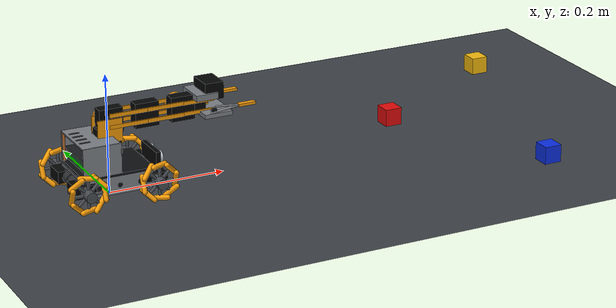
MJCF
<mujoco model="ugrp_masterpi_dynamics_v2">
  <compiler angle="radian" />
  <option timestep="0.002" gravity="0 0 -9.81" integrator="implicitfast" cone="elliptic" iterations="80" />
  <visual><global offwidth="1280" offheight="720" /><map znear=".002" /></visual>
  <asset>
    <texture type="skybox" builtin="gradient" rgb1=".08 .09 .11" rgb2=".20 .22 .26" width="512" height="3072" />
    <texture name="ground" type="2d" builtin="checker" width="256" height="256" rgb1=".20 .22 .24" rgb2=".27 .29 .31" />
    <material name="groundmat" texture="ground" texrepeat="14 14" reflectance=".035" />
    <material name="aluminum" rgba=".48 .50 .52 1" />
    <material name="dark" rgba=".055 .060 .068 1" />
    <material name="black" rgba=".018 .020 .024 1" />

    <material name="orange" rgba=".95 .60 .03 1" />
    <material name="hub" rgba=".28 .30 .32 1" />
    <material name="redmat" rgba=".88 .04 .04 1" />
    <material name="blumat" rgba=".04 .18 .88 1" />
    <material name="yellowmat" rgba=".95 .72 .05 1" />
  </asset>
  <worldbody>
    <light pos="0 -1.3 2.4" dir="0 .25 -1" diffuse="1 1 1" ambient=".34 .34 .34" specular=".22 .22 .22" />
    <light pos="-1 1.7 1.7" dir=".3 -.4 -1" diffuse=".70 .70 .70" ambient=".22 .22 .22" specular=".12 .12 .12" />
    <light pos="1.4 -.2 2.0" dir="-.55 .05 -1" diffuse=".58 .58 .58" ambient=".18 .18 .18" specular=".08 .08 .08" />
    <geom name="floor" type="plane" size="3 3 .1" material="groundmat" />

    <body name="robot" pos="0.000000 0.000000 0.032500">
  <freejoint name="base_free" />
  <inertial pos="0 0 .042" mass=".735" diaginertia=".0020 .0027 .0032" />

  <geom name="base_lower_collision" type="box" pos="0 0 -0.000500" size="0.058000 0.045000 0.015000" rgba="0 0 0 0" contype="2" conaffinity="1" friction=".55 .01 .001" />
  <geom name="base_top" type="box" pos="0 0 0.016500" size="0.060000 0.048000 .002" material="dark" contype="2" conaffinity="1" />
  <geom name="left_side_panel_visual" type="box" pos="0 0.046500 -0.000500" size="0.056000 .0015 0.015000" material="aluminum" mass="0" contype="0" conaffinity="0" />
  <geom name="right_side_panel_visual" type="box" pos="0 -0.046500 -0.000500" size="0.056000 .0015 0.015000" material="aluminum" mass="0" contype="0" conaffinity="0" />
  <geom name="front_plate" type="box" pos="0.060000 0 -0.000500" size=".0015 0.045000 0.015000" material="aluminum" contype="2" conaffinity="1" />
  <geom name="rear_plate_visual" type="box" pos="-0.060000 0 -0.000500" size=".0015 0.045000 0.015000" material="aluminum" mass="0" contype="0" conaffinity="0" />

  <geom name="left_chassis_hole_front" type="cylinder" pos=".035 0.048200 -0.000500" size=".0045 .0005" euler="1.5708 0 0" material="dark" mass="0" contype="0" conaffinity="0" />
  <geom name="left_chassis_hole_mid" type="cylinder" pos="0 0.048200 -0.000500" size=".0040 .0005" euler="1.5708 0 0" material="dark" mass="0" contype="0" conaffinity="0" />
  <geom name="left_chassis_hole_rear" type="cylinder" pos="-.035 0.048200 -0.000500" size=".0045 .0005" euler="1.5708 0 0" material="dark" mass="0" contype="0" conaffinity="0" />
  <geom name="right_chassis_hole_front" type="cylinder" pos=".035 -0.048200 -0.000500" size=".0045 .0005" euler="1.5708 0 0" material="dark" mass="0" contype="0" conaffinity="0" />
  <geom name="right_chassis_hole_mid" type="cylinder" pos="0 -0.048200 -0.000500" size=".0040 .0005" euler="1.5708 0 0" material="dark" mass="0" contype="0" conaffinity="0" />
  <geom name="right_chassis_hole_rear" type="cylinder" pos="-.035 -0.048200 -0.000500" size=".0045 .0005" euler="1.5708 0 0" material="dark" mass="0" contype="0" conaffinity="0" />

  <geom name="motor_fl_gearbox_visual" type="box" pos="0.060000 .037 0" size=".018 .018 .010" material="black" mass="0" contype="0" conaffinity="0" />
  <geom name="motor_fr_gearbox_visual" type="box" pos="0.060000 -.037 0" size=".018 .018 .010" material="black" mass="0" contype="0" conaffinity="0" />
  <geom name="motor_rl_gearbox_visual" type="box" pos="-0.060000 .037 0" size=".018 .018 .010" material="black" mass="0" contype="0" conaffinity="0" />
  <geom name="motor_rr_gearbox_visual" type="box" pos="-0.060000 -.037 0" size=".018 .018 .010" material="black" mass="0" contype="0" conaffinity="0" />
  <geom name="motor_fl_can_visual" type="cylinder" pos="0.060000 .014 0" size=".011 .012" euler="1.5708 0 0" rgba=".18 .19 .20 1" mass="0" contype="0" conaffinity="0" />
  <geom name="motor_fr_can_visual" type="cylinder" pos="0.060000 -.014 0" size=".011 .012" euler="1.5708 0 0" rgba=".18 .19 .20 1" mass="0" contype="0" conaffinity="0" />
  <geom name="motor_rl_can_visual" type="cylinder" pos="-0.060000 .014 0" size=".011 .012" euler="1.5708 0 0" rgba=".18 .19 .20 1" mass="0" contype="0" conaffinity="0" />
  <geom name="motor_rr_can_visual" type="cylinder" pos="-0.060000 -.014 0" size=".011 .012" euler="1.5708 0 0" rgba=".18 .19 .20 1" mass="0" contype="0" conaffinity="0" />

  <geom name="rear_cage_collision" type="box" pos="-0.028000 0 0.043500" size="0.032000 0.046000 0.025000" rgba="0 0 0 0" contype="2" conaffinity="1" />
  <geom name="pi_board_visual" type="box" pos="-0.028000 0 0.027500" size="0.028000 0.042500 .002" rgba=".035 .23 .09 1" mass="0" contype="0" conaffinity="0" />
  <geom name="pi_heatsink_visual" type="box" pos="-0.034000 0 0.034500" size=".012 .014 .003" material="dark" mass="0" contype="0" conaffinity="0" />
  <geom name="expansion_board_visual" type="box" pos="-0.028000 0 0.041500" size="0.028000 0.042500 .0015" rgba=".10 .11 .12 1" mass="0" contype="0" conaffinity="0" />

  <geom name="electronics_left_side_visual" type="box" pos="-0.028000 0.046000 0.043500" size="0.032000 .0014 0.025000" material="aluminum" mass="0" contype="0" conaffinity="0" />
  <geom name="electronics_right_side_visual" type="box" pos="-0.028000 -0.046000 0.043500" size="0.032000 .0014 0.025000" material="aluminum" mass="0" contype="0" conaffinity="0" />
  <geom name="electronics_top_cover_visual" type="box" pos="-0.028000 0 0.067300" size="0.032000 0.046000 .0012" material="aluminum" mass="0" contype="0" conaffinity="0" />

  <geom name="top_cover_slot_1" type="box" pos="-0.046000 .025 0.068550" size=".009 .003 .00015" material="dark" mass="0" contype="0" conaffinity="0" />
  <geom name="top_cover_slot_2" type="box" pos="-0.046000 .010 0.068550" size=".009 .003 .00015" material="dark" mass="0" contype="0" conaffinity="0" />
  <geom name="top_cover_slot_3" type="box" pos="-0.046000 -.005 0.068550" size=".009 .003 .00015" material="dark" mass="0" contype="0" conaffinity="0" />
  <geom name="top_cover_slot_4" type="box" pos="-0.046000 -.020 0.068550" size=".009 .003 .00015" material="dark" mass="0" contype="0" conaffinity="0" />

  <geom name="cage_front_left_standoff" type="capsule" fromto="0.001000 0.043000 0.018500 0.001000 0.043000 0.065500" size=".002" rgba=".72 .42 .16 1" mass="0" contype="0" conaffinity="0" />
  <geom name="cage_front_right_standoff" type="capsule" fromto="0.001000 -0.043000 0.018500 0.001000 -0.043000 0.065500" size=".002" rgba=".72 .42 .16 1" mass="0" contype="0" conaffinity="0" />
  <geom name="cage_rear_left_standoff" type="capsule" fromto="-0.057000 0.043000 0.018500 -0.057000 0.043000 0.065500" size=".002" rgba=".72 .42 .16 1" mass="0" contype="0" conaffinity="0" />
  <geom name="cage_rear_right_standoff" type="capsule" fromto="-0.057000 -0.043000 0.018500 -0.057000 -0.043000 0.065500" size=".002" rgba=".72 .42 .16 1" mass="0" contype="0" conaffinity="0" />
  <geom name="cage_mid_left_standoff" type="capsule" fromto="-0.028000 0.043000 0.018500 -0.028000 0.043000 0.065500" size=".002" rgba=".72 .42 .16 1" mass="0" contype="0" conaffinity="0" />
  <geom name="cage_mid_right_standoff" type="capsule" fromto="-0.028000 -0.043000 0.018500 -0.028000 -0.043000 0.065500" size=".002" rgba=".72 .42 .16 1" mass="0" contype="0" conaffinity="0" />

  <geom name="ultrasonic_bracket" type="box" pos="0.074000 0 0.021500" size=".004 .030 .013" material="black" mass="0" contype="0" conaffinity="0" />
  <geom name="ultrasonic_left" type="cylinder" pos="0.078000 .017 0.021500" size=".010 .006" euler="0 1.5708 0" rgba=".72 .76 .80 1" mass="0" contype="0" conaffinity="0" />
  <geom name="ultrasonic_right" type="cylinder" pos="0.078000 -.017 0.021500" size=".010 .006" euler="0 1.5708 0" rgba=".72 .76 .80 1" mass="0" contype="0" conaffinity="0" />

  <body name="wheel_fl_body" pos="0.060000 0.065500 0">
    <joint name="wheel_fl_joint" type="hinge" axis="0 1 0" damping=".0015" armature=".00002" />
    <inertial pos="0 0 0" mass=".05" diaginertia=".000018 .000029 .000018" />
    <geom name="wheel_fl" type="cylinder" size="0.032500 0.015500" euler="1.5708 0 0" rgba="0 0 0 0" contype="2" conaffinity="1" friction="0.001000 .0001 .00001" condim="4" priority="1" />
    <geom name="wheel_fl_hub_visual" type="cylinder" size=".009 0.015500" euler="1.5708 0 0" material="hub" mass="0" contype="0" conaffinity="0" />
    <geom name="wheel_fl_hub_spoke_0" type="capsule" fromto="0.007000 0.000000 0.000000 0.021775 0.000000 0.000000" size=".0024" material="hub" mass="0" contype="0" conaffinity="0" />
    <geom name="wheel_fl_hub_spoke_1" type="capsule" fromto="0.004950 0.000000 0.004950 0.015397 0.000000 0.015397" size=".0024" material="hub" mass="0" contype="0" conaffinity="0" />
    <geom name="wheel_fl_hub_spoke_2" type="capsule" fromto="0.000000 0.000000 0.007000 0.000000 0.000000 0.021775" size=".0024" material="hub" mass="0" contype="0" conaffinity="0" />
    <geom name="wheel_fl_hub_spoke_3" type="capsule" fromto="-0.004950 0.000000 0.004950 -0.015397 0.000000 0.015397" size=".0024" material="hub" mass="0" contype="0" conaffinity="0" />
    <geom name="wheel_fl_hub_spoke_4" type="capsule" fromto="-0.007000 0.000000 0.000000 -0.021775 0.000000 0.000000" size=".0024" material="hub" mass="0" contype="0" conaffinity="0" />
    <geom name="wheel_fl_hub_spoke_5" type="capsule" fromto="-0.004950 0.000000 -0.004950 -0.015397 0.000000 -0.015397" size=".0024" material="hub" mass="0" contype="0" conaffinity="0" />
    <geom name="wheel_fl_hub_spoke_6" type="capsule" fromto="-0.000000 0.000000 -0.007000 -0.000000 0.000000 -0.021775" size=".0024" material="hub" mass="0" contype="0" conaffinity="0" />
    <geom name="wheel_fl_hub_spoke_7" type="capsule" fromto="0.004950 0.000000 -0.004950 0.015397 0.000000 -0.015397" size=".0024" material="hub" mass="0" contype="0" conaffinity="0" />
    <geom name="wheel_fl_roller_0" type="capsule" fromto="0.027300 -0.004750 -0.011562 0.027300 0.004750 0.011562" size=".0042" material="orange" mass="0" contype="0" conaffinity="0" />
    <geom name="wheel_fl_roller_1" type="capsule" fromto="0.027480 -0.004750 0.011128 0.011128 0.004750 0.027480" size=".0042" material="orange" mass="0" contype="0" conaffinity="0" />
    <geom name="wheel_fl_roller_2" type="capsule" fromto="0.011562 -0.004750 0.027300 -0.011562 0.004750 0.027300" size=".0042" material="orange" mass="0" contype="0" conaffinity="0" />
    <geom name="wheel_fl_roller_3" type="capsule" fromto="-0.011128 -0.004750 0.027480 -0.027480 0.004750 0.011128" size=".0042" material="orange" mass="0" contype="0" conaffinity="0" />
    <geom name="wheel_fl_roller_4" type="capsule" fromto="-0.027300 -0.004750 0.011562 -0.027300 0.004750 -0.011562" size=".0042" material="orange" mass="0" contype="0" conaffinity="0" />
    <geom name="wheel_fl_roller_5" type="capsule" fromto="-0.027480 -0.004750 -0.011128 -0.011128 0.004750 -0.027480" size=".0042" material="orange" mass="0" contype="0" conaffinity="0" />
    <geom name="wheel_fl_roller_6" type="capsule" fromto="-0.011562 -0.004750 -0.027300 0.011562 0.004750 -0.027300" size=".0042" material="orange" mass="0" contype="0" conaffinity="0" />
    <geom name="wheel_fl_roller_7" type="capsule" fromto="0.011128 -0.004750 -0.027480 0.027480 0.004750 -0.011128" size=".0042" material="orange" mass="0" contype="0" conaffinity="0" />
  </body>
  <body name="wheel_fr_body" pos="0.060000 -0.065500 0">
    <joint name="wheel_fr_joint" type="hinge" axis="0 1 0" damping=".0015" armature=".00002" />
    <inertial pos="0 0 0" mass=".05" diaginertia=".000018 .000029 .000018" />
    <geom name="wheel_fr" type="cylinder" size="0.032500 0.015500" euler="1.5708 0 0" rgba="0 0 0 0" contype="2" conaffinity="1" friction="0.001000 .0001 .00001" condim="4" priority="1" />
    <geom name="wheel_fr_hub_visual" type="cylinder" size=".009 0.015500" euler="1.5708 0 0" material="hub" mass="0" contype="0" conaffinity="0" />
    <geom name="wheel_fr_hub_spoke_0" type="capsule" fromto="0.007000 0.000000 0.000000 0.021775 0.000000 0.000000" size=".0024" material="hub" mass="0" contype="0" conaffinity="0" />
    <geom name="wheel_fr_hub_spoke_1" type="capsule" fromto="0.004950 0.000000 0.004950 0.015397 0.000000 0.015397" size=".0024" material="hub" mass="0" contype="0" conaffinity="0" />
    <geom name="wheel_fr_hub_spoke_2" type="capsule" fromto="0.000000 0.000000 0.007000 0.000000 0.000000 0.021775" size=".0024" material="hub" mass="0" contype="0" conaffinity="0" />
    <geom name="wheel_fr_hub_spoke_3" type="capsule" fromto="-0.004950 0.000000 0.004950 -0.015397 0.000000 0.015397" size=".0024" material="hub" mass="0" contype="0" conaffinity="0" />
    <geom name="wheel_fr_hub_spoke_4" type="capsule" fromto="-0.007000 0.000000 0.000000 -0.021775 0.000000 0.000000" size=".0024" material="hub" mass="0" contype="0" conaffinity="0" />
    <geom name="wheel_fr_hub_spoke_5" type="capsule" fromto="-0.004950 0.000000 -0.004950 -0.015397 0.000000 -0.015397" size=".0024" material="hub" mass="0" contype="0" conaffinity="0" />
    <geom name="wheel_fr_hub_spoke_6" type="capsule" fromto="-0.000000 0.000000 -0.007000 -0.000000 0.000000 -0.021775" size=".0024" material="hub" mass="0" contype="0" conaffinity="0" />
    <geom name="wheel_fr_hub_spoke_7" type="capsule" fromto="0.004950 0.000000 -0.004950 0.015397 0.000000 -0.015397" size=".0024" material="hub" mass="0" contype="0" conaffinity="0" />
    <geom name="wheel_fr_roller_0" type="capsule" fromto="0.027300 -0.004750 0.011562 0.027300 0.004750 -0.011562" size=".0042" material="orange" mass="0" contype="0" conaffinity="0" />
    <geom name="wheel_fr_roller_1" type="capsule" fromto="0.011128 -0.004750 0.027480 0.027480 0.004750 0.011128" size=".0042" material="orange" mass="0" contype="0" conaffinity="0" />
    <geom name="wheel_fr_roller_2" type="capsule" fromto="-0.011562 -0.004750 0.027300 0.011562 0.004750 0.027300" size=".0042" material="orange" mass="0" contype="0" conaffinity="0" />
    <geom name="wheel_fr_roller_3" type="capsule" fromto="-0.027480 -0.004750 0.011128 -0.011128 0.004750 0.027480" size=".0042" material="orange" mass="0" contype="0" conaffinity="0" />
    <geom name="wheel_fr_roller_4" type="capsule" fromto="-0.027300 -0.004750 -0.011562 -0.027300 0.004750 0.011562" size=".0042" material="orange" mass="0" contype="0" conaffinity="0" />
    <geom name="wheel_fr_roller_5" type="capsule" fromto="-0.011128 -0.004750 -0.027480 -0.027480 0.004750 -0.011128" size=".0042" material="orange" mass="0" contype="0" conaffinity="0" />
    <geom name="wheel_fr_roller_6" type="capsule" fromto="0.011562 -0.004750 -0.027300 -0.011562 0.004750 -0.027300" size=".0042" material="orange" mass="0" contype="0" conaffinity="0" />
    <geom name="wheel_fr_roller_7" type="capsule" fromto="0.027480 -0.004750 -0.011128 0.011128 0.004750 -0.027480" size=".0042" material="orange" mass="0" contype="0" conaffinity="0" />
  </body>
  <body name="wheel_rl_body" pos="-0.060000 0.065500 0">
    <joint name="wheel_rl_joint" type="hinge" axis="0 1 0" damping=".0015" armature=".00002" />
    <inertial pos="0 0 0" mass=".05" diaginertia=".000018 .000029 .000018" />
    <geom name="wheel_rl" type="cylinder" size="0.032500 0.015500" euler="1.5708 0 0" rgba="0 0 0 0" contype="2" conaffinity="1" friction="0.001000 .0001 .00001" condim="4" priority="1" />
    <geom name="wheel_rl_hub_visual" type="cylinder" size=".009 0.015500" euler="1.5708 0 0" material="hub" mass="0" contype="0" conaffinity="0" />
    <geom name="wheel_rl_hub_spoke_0" type="capsule" fromto="0.007000 0.000000 0.000000 0.021775 0.000000 0.000000" size=".0024" material="hub" mass="0" contype="0" conaffinity="0" />
    <geom name="wheel_rl_hub_spoke_1" type="capsule" fromto="0.004950 0.000000 0.004950 0.015397 0.000000 0.015397" size=".0024" material="hub" mass="0" contype="0" conaffinity="0" />
    <geom name="wheel_rl_hub_spoke_2" type="capsule" fromto="0.000000 0.000000 0.007000 0.000000 0.000000 0.021775" size=".0024" material="hub" mass="0" contype="0" conaffinity="0" />
    <geom name="wheel_rl_hub_spoke_3" type="capsule" fromto="-0.004950 0.000000 0.004950 -0.015397 0.000000 0.015397" size=".0024" material="hub" mass="0" contype="0" conaffinity="0" />
    <geom name="wheel_rl_hub_spoke_4" type="capsule" fromto="-0.007000 0.000000 0.000000 -0.021775 0.000000 0.000000" size=".0024" material="hub" mass="0" contype="0" conaffinity="0" />
    <geom name="wheel_rl_hub_spoke_5" type="capsule" fromto="-0.004950 0.000000 -0.004950 -0.015397 0.000000 -0.015397" size=".0024" material="hub" mass="0" contype="0" conaffinity="0" />
    <geom name="wheel_rl_hub_spoke_6" type="capsule" fromto="-0.000000 0.000000 -0.007000 -0.000000 0.000000 -0.021775" size=".0024" material="hub" mass="0" contype="0" conaffinity="0" />
    <geom name="wheel_rl_hub_spoke_7" type="capsule" fromto="0.004950 0.000000 -0.004950 0.015397 0.000000 -0.015397" size=".0024" material="hub" mass="0" contype="0" conaffinity="0" />
    <geom name="wheel_rl_roller_0" type="capsule" fromto="0.027300 -0.004750 0.011562 0.027300 0.004750 -0.011562" size=".0042" material="orange" mass="0" contype="0" conaffinity="0" />
    <geom name="wheel_rl_roller_1" type="capsule" fromto="0.011128 -0.004750 0.027480 0.027480 0.004750 0.011128" size=".0042" material="orange" mass="0" contype="0" conaffinity="0" />
    <geom name="wheel_rl_roller_2" type="capsule" fromto="-0.011562 -0.004750 0.027300 0.011562 0.004750 0.027300" size=".0042" material="orange" mass="0" contype="0" conaffinity="0" />
    <geom name="wheel_rl_roller_3" type="capsule" fromto="-0.027480 -0.004750 0.011128 -0.011128 0.004750 0.027480" size=".0042" material="orange" mass="0" contype="0" conaffinity="0" />
    <geom name="wheel_rl_roller_4" type="capsule" fromto="-0.027300 -0.004750 -0.011562 -0.027300 0.004750 0.011562" size=".0042" material="orange" mass="0" contype="0" conaffinity="0" />
    <geom name="wheel_rl_roller_5" type="capsule" fromto="-0.011128 -0.004750 -0.027480 -0.027480 0.004750 -0.011128" size=".0042" material="orange" mass="0" contype="0" conaffinity="0" />
    <geom name="wheel_rl_roller_6" type="capsule" fromto="0.011562 -0.004750 -0.027300 -0.011562 0.004750 -0.027300" size=".0042" material="orange" mass="0" contype="0" conaffinity="0" />
    <geom name="wheel_rl_roller_7" type="capsule" fromto="0.027480 -0.004750 -0.011128 0.011128 0.004750 -0.027480" size=".0042" material="orange" mass="0" contype="0" conaffinity="0" />
  </body>
  <body name="wheel_rr_body" pos="-0.060000 -0.065500 0">
    <joint name="wheel_rr_joint" type="hinge" axis="0 1 0" damping=".0015" armature=".00002" />
    <inertial pos="0 0 0" mass=".05" diaginertia=".000018 .000029 .000018" />
    <geom name="wheel_rr" type="cylinder" size="0.032500 0.015500" euler="1.5708 0 0" rgba="0 0 0 0" contype="2" conaffinity="1" friction="0.001000 .0001 .00001" condim="4" priority="1" />
    <geom name="wheel_rr_hub_visual" type="cylinder" size=".009 0.015500" euler="1.5708 0 0" material="hub" mass="0" contype="0" conaffinity="0" />
    <geom name="wheel_rr_hub_spoke_0" type="capsule" fromto="0.007000 0.000000 0.000000 0.021775 0.000000 0.000000" size=".0024" material="hub" mass="0" contype="0" conaffinity="0" />
    <geom name="wheel_rr_hub_spoke_1" type="capsule" fromto="0.004950 0.000000 0.004950 0.015397 0.000000 0.015397" size=".0024" material="hub" mass="0" contype="0" conaffinity="0" />
    <geom name="wheel_rr_hub_spoke_2" type="capsule" fromto="0.000000 0.000000 0.007000 0.000000 0.000000 0.021775" size=".0024" material="hub" mass="0" contype="0" conaffinity="0" />
    <geom name="wheel_rr_hub_spoke_3" type="capsule" fromto="-0.004950 0.000000 0.004950 -0.015397 0.000000 0.015397" size=".0024" material="hub" mass="0" contype="0" conaffinity="0" />
    <geom name="wheel_rr_hub_spoke_4" type="capsule" fromto="-0.007000 0.000000 0.000000 -0.021775 0.000000 0.000000" size=".0024" material="hub" mass="0" contype="0" conaffinity="0" />
    <geom name="wheel_rr_hub_spoke_5" type="capsule" fromto="-0.004950 0.000000 -0.004950 -0.015397 0.000000 -0.015397" size=".0024" material="hub" mass="0" contype="0" conaffinity="0" />
    <geom name="wheel_rr_hub_spoke_6" type="capsule" fromto="-0.000000 0.000000 -0.007000 -0.000000 0.000000 -0.021775" size=".0024" material="hub" mass="0" contype="0" conaffinity="0" />
    <geom name="wheel_rr_hub_spoke_7" type="capsule" fromto="0.004950 0.000000 -0.004950 0.015397 0.000000 -0.015397" size=".0024" material="hub" mass="0" contype="0" conaffinity="0" />
    <geom name="wheel_rr_roller_0" type="capsule" fromto="0.027300 -0.004750 -0.011562 0.027300 0.004750 0.011562" size=".0042" material="orange" mass="0" contype="0" conaffinity="0" />
    <geom name="wheel_rr_roller_1" type="capsule" fromto="0.027480 -0.004750 0.011128 0.011128 0.004750 0.027480" size=".0042" material="orange" mass="0" contype="0" conaffinity="0" />
    <geom name="wheel_rr_roller_2" type="capsule" fromto="0.011562 -0.004750 0.027300 -0.011562 0.004750 0.027300" size=".0042" material="orange" mass="0" contype="0" conaffinity="0" />
    <geom name="wheel_rr_roller_3" type="capsule" fromto="-0.011128 -0.004750 0.027480 -0.027480 0.004750 0.011128" size=".0042" material="orange" mass="0" contype="0" conaffinity="0" />
    <geom name="wheel_rr_roller_4" type="capsule" fromto="-0.027300 -0.004750 0.011562 -0.027300 0.004750 -0.011562" size=".0042" material="orange" mass="0" contype="0" conaffinity="0" />
    <geom name="wheel_rr_roller_5" type="capsule" fromto="-0.027480 -0.004750 -0.011128 -0.011128 0.004750 -0.027480" size=".0042" material="orange" mass="0" contype="0" conaffinity="0" />
    <geom name="wheel_rr_roller_6" type="capsule" fromto="-0.011562 -0.004750 -0.027300 0.011562 0.004750 -0.027300" size=".0042" material="orange" mass="0" contype="0" conaffinity="0" />
    <geom name="wheel_rr_roller_7" type="capsule" fromto="0.011128 -0.004750 -0.027480 0.027480 0.004750 -0.011128" size=".0042" material="orange" mass="0" contype="0" conaffinity="0" />
  </body>

  <body name="arm_base" pos="0 0 0.062500">
    <joint name="arm_yaw" type="hinge" axis="0 0 1" range="-1.75 1.75" damping=".025" />
    <inertial pos="0 0 .012" mass=".030" diaginertia=".000025 .000025 .000020" />
    <geom name="base_yaw_servo_visual" type="box" pos="0 0 -.002" size="0.020000 0.010000 0.020250" material="black" mass="0" contype="0" conaffinity="0" />
    <geom name="base_yaw_bearing_visual" type="cylinder" pos="0 0 -.021" size=".024 .004" material="aluminum" mass="0" contype="0" conaffinity="0" />
    <geom name="arm_pedestal_collision" type="cylinder" size=".025 .020" pos="0 0 -.002" rgba="0 0 0 0" contype="2" conaffinity="1" />

    <geom name="shoulder_mount_plate_left" type="box" pos="0 0.012500 0.015250" size=".021 0.001000 0.019250" material="orange" mass="0" contype="0" conaffinity="0" />
    <geom name="shoulder_mount_plate_right" type="box" pos="0 -0.012500 0.015250" size=".021 0.001000 0.019250" material="orange" mass="0" contype="0" conaffinity="0" />

    <body name="shoulder_link" pos="0 0 0.030500">
      <joint name="shoulder" type="hinge" axis="0 -1 0" range="-.15 2.80" damping=".035" />
      <inertial pos="0.032500 0 0" mass=".050" diaginertia=".000020 .000030 .000030" />
      <geom name="shoulder_servo_visual" type="box" pos=".004 0 0" size="0.020000 0.010000 0.020250" material="black" mass="0" contype="0" conaffinity="0" />
      <geom name="shoulder_horn_outer" type="cylinder" pos="0 0.014500 0" size="0.018000 0.001500" euler="1.5708 0 0" material="orange" mass="0" contype="0" conaffinity="0" />
      <geom name="shoulder_horn_center" type="cylinder" pos="0 0.016500 0" size=".006 .0012" euler="1.5708 0 0" rgba=".82 .84 .86 1" mass="0" contype="0" conaffinity="0" />

      <geom name="upper_arm_plate_left" type="box" pos="0.032500 0.012500 0.009500" size="0.032500 0.001000 0.003200" material="orange" mass="0" contype="0" conaffinity="0" />
      <geom name="upper_arm_plate_left_lower" type="box" pos="0.032500 0.012500 -0.009500" size="0.032500 0.001000 0.003200" material="orange" mass="0" contype="0" conaffinity="0" />
      <geom name="upper_arm_plate_right" type="box" pos="0.032500 -0.012500 0.009500" size="0.032500 0.001000 0.003200" material="orange" mass="0" contype="0" conaffinity="0" />
      <geom name="upper_arm_plate_right_lower" type="box" pos="0.032500 -0.012500 -0.009500" size="0.032500 0.001000 0.003200" material="orange" mass="0" contype="0" conaffinity="0" />
      <geom name="upper_arm_collision" type="capsule" fromto="0 0 0 0.065000 0 0" size=".011" rgba="0 0 0 0" contype="2" conaffinity="1" />

      <body name="elbow_link" pos="0.065000 0 0">
        <joint name="elbow" type="hinge" axis="0 -1 0" range="-1.80 1.80" damping=".030" />
        <inertial pos="0.031000 0 0" mass=".040" diaginertia=".000016 .000022 .000022" />
        <geom name="elbow_servo_visual" type="box" pos="0 0 0" size="0.020000 0.010000 0.020250" material="black" mass="0" contype="0" conaffinity="0" />
        <geom name="elbow_horn_outer" type="cylinder" pos="0 0.014500 0" size="0.018000 0.001500" euler="1.5708 0 0" material="orange" mass="0" contype="0" conaffinity="0" />
        <geom name="elbow_horn_center" type="cylinder" pos="0 0.016500 0" size=".006 .0012" euler="1.5708 0 0" rgba=".82 .84 .86 1" mass="0" contype="0" conaffinity="0" />
        <geom name="forearm_plate_left" type="box" pos="0.031000 0.012500 0.009500" size="0.031000 0.001000 0.003200" material="orange" mass="0" contype="0" conaffinity="0" />
        <geom name="forearm_plate_left_lower" type="box" pos="0.031000 0.012500 -0.009500" size="0.031000 0.001000 0.003200" material="orange" mass="0" contype="0" conaffinity="0" />
        <geom name="forearm_plate_right" type="box" pos="0.031000 -0.012500 0.009500" size="0.031000 0.001000 0.003200" material="orange" mass="0" contype="0" conaffinity="0" />
        <geom name="forearm_plate_right_lower" type="box" pos="0.031000 -0.012500 -0.009500" size="0.031000 0.001000 0.003200" material="orange" mass="0" contype="0" conaffinity="0" />
        <geom name="forearm_collision" type="capsule" fromto="0 0 0 0.062000 0 0" size=".010" rgba="0 0 0 0" contype="2" conaffinity="1" />

        <body name="wrist_link" pos="0.062000 0 0">
          <joint name="wrist_pitch" type="hinge" axis="0 -1 0" range="-1.80 1.80" damping=".020" />
          <inertial pos=".035 0 0" mass=".025" diaginertia=".000010 .000018 .000018" />
          <geom name="wrist_servo_visual" type="box" pos="0 0 0" size="0.020000 0.010000 0.020250" material="black" mass="0" contype="0" conaffinity="0" />
          <geom name="wrist_horn_outer" type="cylinder" pos="0 .022 0" size=".017 .003" euler="1.5708 0 0" material="orange" mass="0" contype="0" conaffinity="0" />
          <geom name="wrist_horn_center" type="cylinder" pos="0 0.016500 0" size=".006 .0012" euler="1.5708 0 0" rgba=".82 .84 .86 1" mass="0" contype="0" conaffinity="0" />
          <geom name="wrist_plate_left" type="box" pos=".027 0.012500 0.009000" size=".027 0.001000 0.003000" material="orange" mass="0" contype="0" conaffinity="0" />
          <geom name="wrist_plate_left_lower" type="box" pos=".027 0.012500 -0.009000" size=".027 0.001000 0.003000" material="orange" mass="0" contype="0" conaffinity="0" />
          <geom name="wrist_plate_right" type="box" pos=".027 -0.012500 0.009000" size=".027 0.001000 0.003000" material="orange" mass="0" contype="0" conaffinity="0" />
          <geom name="wrist_plate_right_lower" type="box" pos=".027 -0.012500 -0.009000" size=".027 0.001000 0.003000" material="orange" mass="0" contype="0" conaffinity="0" />
          <geom name="wrist_collision" type="capsule" fromto="0 0 0 .055 0 0" size=".009" rgba="0 0 0 0" contype="2" conaffinity="1" />

          <body name="gripper" pos="0 0 0">
            <inertial pos=".065 0 .006" mass=".010" diaginertia=".000010 .000017 .000017" />
            <geom name="gripper_servo_visual" type="box" pos=".030 0 -.003" size="0.011150 0.006000 0.011600" material="black" mass="0" contype="0" conaffinity="0" />
            <geom name="gripper_crossbar_visual" type="box" pos=".052 0 -.012" size=".024 .034 .0035" material="aluminum" mass="0" contype="0" conaffinity="0" />

            <geom name="camera_bracket" type="box" pos=".036 0 .018" size=".019 .026 .005" material="aluminum" contype="2" conaffinity="1" />
            <geom name="camera_body" type="box" pos=".050 0 .025" size=".016 .022 .014" material="black" mass="0" contype="0" conaffinity="0" />
            <geom name="camera_lens_visual" type="cylinder" pos=".067 0 .025" size=".009 .003" euler="0 1.5708 0" rgba=".02 .02 .025 1" mass="0" contype="0" conaffinity="0" />
            <camera name="robot_cam" pos="0.067000000000 0.000000000000 0.013600000000" quat="0.466417262019 0.531464897891 -0.531464897891 -0.466417262019" focalpixel="619.519454051723 622.165488481875" principalpixel="32.310893911032 21.303133515443" resolution="640 480" sensorsize="640 480" />
            <site name="camera_axis_site" pos="0.070000 0 0" size=".001" rgba="0 0 0 0" />

            <body name="left_jaw" pos="0 .035 0">
              <joint name="left_gripper_close" type="slide" axis="0 -1 0" range="0 0.016000" damping="1.200" />
              <inertial pos=".095 0 -.018" mass=".005" diaginertia=".000002 .000006 .000006" />
              <geom name="left_jaw_link_visual" type="capsule" fromto=".039 0 -.006 .090 0 0" size=".0022" material="aluminum" mass="0" contype="0" conaffinity="0" />
              <geom name="left_jaw_link_upper_visual" type="capsule" fromto=".047 0 .004 .089 0 0" size=".0016" material="aluminum" mass="0" contype="0" conaffinity="0" />
              <geom name="left_jaw_pivot_visual" type="cylinder" pos=".043 0 -.002" size=".005 .0015" euler="1.5708 0 0" material="dark" mass="0" contype="0" conaffinity="0" />
              <geom name="left_finger_pad_visual" type="box" pos=".100 0 0" size="0.015000 0.004000 0.002200" material="orange" mass="0" contype="0" conaffinity="0" />
              <geom name="left_finger" type="box" pos=".100 0 0" size="0.014000 0.004500 0.003500" rgba="0 0 0 0" contype="2" conaffinity="1" friction="3.400000 0.030000 0.002000" solref=".006 1" solimp=".90 .97 .002" />
            </body>
            <body name="right_jaw" pos="0 -.035 0">
              <joint name="right_gripper_close" type="slide" axis="0 1 0" range="0 0.016000" damping="1.200" />
              <inertial pos=".095 0 -.018" mass=".005" diaginertia=".000002 .000006 .000006" />
              <geom name="right_jaw_link_visual" type="capsule" fromto=".039 0 -.006 .090 0 0" size=".0022" material="aluminum" mass="0" contype="0" conaffinity="0" />
              <geom name="right_jaw_link_upper_visual" type="capsule" fromto=".047 0 .004 .089 0 0" size=".0016" material="aluminum" mass="0" contype="0" conaffinity="0" />
              <geom name="right_jaw_pivot_visual" type="cylinder" pos=".043 0 -.002" size=".005 .0015" euler="1.5708 0 0" material="dark" mass="0" contype="0" conaffinity="0" />
              <geom name="right_finger_pad_visual" type="box" pos=".100 0 0" size="0.015000 0.004000 0.002200" material="orange" mass="0" contype="0" conaffinity="0" />
              <geom name="right_finger" type="box" pos=".100 0 0" size="0.014000 0.004500 0.003500" rgba="0 0 0 0" contype="2" conaffinity="1" friction="3.400000 0.030000 0.002000" solref=".006 1" solimp=".90 .97 .002" />
            </body>
            <site name="grip_site" pos=".100 0 0" size=".001" rgba="0 0 0 0" />
          </body>
        </body>
      </body>
    </body>
  </body>
</body><body name="red_block" pos="0.550000 0.070000 0.015000">
      <freejoint name="red_free" />
      <geom name="red_block_geom" type="box" size="0.015000 0.015000 0.015000" material="redmat" mass="0.00500000" friction="1.000000 0.010000 0.001000" solimp="0.99 0.999 0.001 0.5 2" />
    </body>
    <body name="blue_block" pos="0.700000 -0.200000 0.015000">
      <freejoint name="blue_free" />
      <geom name="blue_block_geom" type="box" size="0.015000 0.015000 0.015000" material="blumat" mass="0.00500000" friction="1.000000 0.010000 0.001000" solimp="0.99 0.999 0.001 0.5 2" />
    </body>
    <body name="yellow_block" pos="0.820000 0.230000 0.015000">
      <freejoint name="yellow_free" />
      <geom name="yellow_block_geom" type="box" size="0.015000 0.015000 0.015000" material="yellowmat" mass="0.00500000" friction="1.000000 0.010000 0.001000" solimp="0.99 0.999 0.001 0.5 2" />
    </body>

    <camera name="cctv_front_left" pos="-.45 -.95 .78" xyaxes=".653620 -.756823 0 .320718 .276984 .905771" fovy="50" />
    <camera name="cctv_front_right" pos="1.48 -.92 .80" xyaxes=".742491 .669856 0 -.329484 .365212 .870667" fovy="50" />
    <camera name="cctv_rear_left" pos="-.38 .98 .82" xyaxes="-.689304 -.724472 0 .327313 -.311424 .892122" fovy="50" />
    <camera name="cctv_top" pos=".65 0 1.80" xyaxes="1 0 0 0 1 0" fovy="46" />
  </worldbody>
<actuator><velocity name="wheel_fl_drive" joint="wheel_fl_joint" kv=".001" ctrllimited="true" ctrlrange="-12.0 12.0" forcelimited="true" forcerange="-.002 .002" /><velocity name="wheel_fr_drive" joint="wheel_fr_joint" kv=".001" ctrllimited="true" ctrlrange="-12.0 12.0" forcelimited="true" forcerange="-.002 .002" /><velocity name="wheel_rl_drive" joint="wheel_rl_joint" kv=".001" ctrllimited="true" ctrlrange="-12.0 12.0" forcelimited="true" forcerange="-.002 .002" /><velocity name="wheel_rr_drive" joint="wheel_rr_joint" kv=".001" ctrllimited="true" ctrlrange="-12.0 12.0" forcelimited="true" forcerange="-.002 .002" /><position name="servo_arm_yaw" joint="arm_yaw" kp="4.0" forcelimited="true" forcerange="-1.2 1.2" /><position name="servo_shoulder" joint="shoulder" kp="7.0" forcelimited="true" forcerange="-2.2 2.2" /><position name="servo_elbow" joint="elbow" kp="6.0" forcelimited="true" forcerange="-1.8 1.8" /><position name="servo_wrist" joint="wrist_pitch" kp="3.5" forcelimited="true" forcerange="-1.0 1.0" /><position name="servo_gripper_left" joint="left_gripper_close" kp="1200.000" forcelimited="true" forcerange="-18 18" /><position name="servo_gripper_right" joint="right_gripper_close" kp="1200.000" forcelimited="true" forcerange="-18 18" /></actuator></mujoco>
